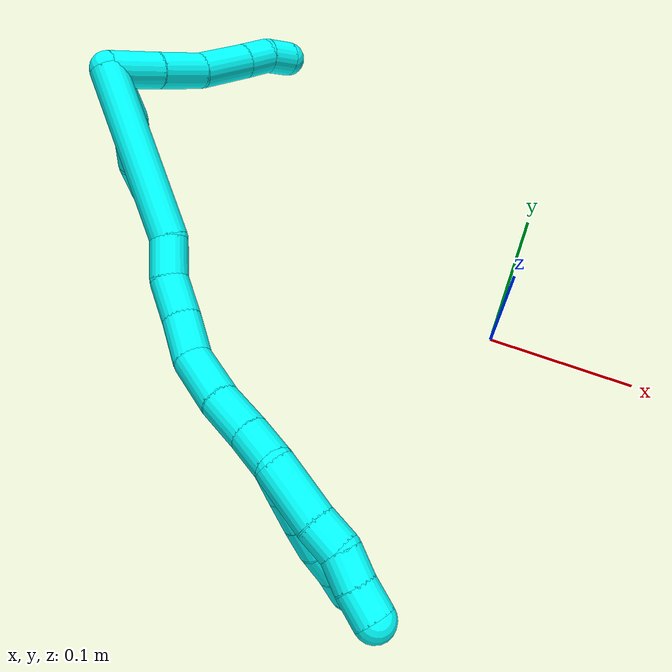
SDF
<sdf version="1.7">
 <world name="default">
  <model name="3">
   <static>0</static>
   <link name="3">
    <collision name="collision-cylinder-e_1_2_8">
     <pose>0.001882 0.017134 -0.005216 -1.86631 0.104681 -0.141186</pose>
     <geometry><cylinder><radius>0.0125</radius><length>0.036017</length></cylinder></geometry>
     <surface>
      <friction><ode><mu>1.16</mu><mu2>1.16</mu2><slip1>0</slip1><slip2>0</slip2></ode></friction>
      <contact><ode><kp>1e+06</kp><kd>1</kd><max_vel>0</max_vel><min_depth>0.001</min_depth></ode></contact>
     </surface>
    </collision>
    <visual name="visual-cylinder-e_1_2_8">
     <pose>0.001882 0.017134 -0.005216 -1.86631 0.104681 -0.141186</pose>
     <geometry><cylinder><radius>0.0125</radius><length>0.036017</length></cylinder></geometry>
     <material><ambient>0.003922 1 0.996078 1</ambient></material>
    </visual>
    <collision name="collision-cylinder-e_2_8_9">
     <pose>0.004596 0.049907 -0.01566 -1.8934 0.050437 -0.070027</pose>
     <geometry><cylinder><radius>0.0125</radius><length>0.033024</length></cylinder></geometry>
     <surface>
      <friction><ode><mu>1.16</mu><mu2>1.16</mu2><slip1>0</slip1><slip2>0</slip2></ode></friction>
      <contact><ode><kp>1e+06</kp><kd>1</kd><max_vel>0</max_vel><min_depth>0.001</min_depth></ode></contact>
     </surface>
    </collision>
    <visual name="visual-cylinder-e_2_8_9">
     <pose>0.004596 0.049907 -0.01566 -1.8934 0.050437 -0.070027</pose>
     <geometry><cylinder><radius>0.0125</radius><length>0.033024</length></cylinder></geometry>
     <material><ambient>0.003922 1 0.996078 1</ambient></material>
    </visual>
    <collision name="collision-cylinder-e_3_9_10">
     <pose>0.00356 0.084726 -0.024958 -1.7799 -0.095035 0.117271</pose>
     <geometry><cylinder><radius>0.0125</radius><length>0.039388</length></cylinder></geometry>
     <surface>
      <friction><ode><mu>1.16</mu><mu2>1.16</mu2><slip1>0</slip1><slip2>0</slip2></ode></friction>
      <contact><ode><kp>1e+06</kp><kd>1</kd><max_vel>0</max_vel><min_depth>0.001</min_depth></ode></contact>
     </surface>
    </collision>
    <visual name="visual-cylinder-e_3_9_10">
     <pose>0.00356 0.084726 -0.024958 -1.7799 -0.095035 0.117271</pose>
     <geometry><cylinder><radius>0.0125</radius><length>0.039388</length></cylinder></geometry>
     <material><ambient>0.003922 1 0.996078 1</ambient></material>
    </visual>
    <collision name="collision-cylinder-e_4_10_11">
     <pose>0.000979 0.114528 -0.030637 -1.72116 -0.066152 0.076919</pose>
     <geometry><cylinder><radius>0.0125</radius><length>0.021538</length></cylinder></geometry>
     <surface>
      <friction><ode><mu>1.16</mu><mu2>1.16</mu2><slip1>0</slip1><slip2>0</slip2></ode></friction>
      <contact><ode><kp>1e+06</kp><kd>1</kd><max_vel>0</max_vel><min_depth>0.001</min_depth></ode></contact>
     </surface>
    </collision>
    <visual name="visual-cylinder-e_4_10_11">
     <pose>0.000979 0.114528 -0.030637 -1.72116 -0.066152 0.076919</pose>
     <geometry><cylinder><radius>0.0125</radius><length>0.021538</length></cylinder></geometry>
     <material><ambient>0.003922 1 0.996078 1</ambient></material>
    </visual>
    <collision name="collision-cylinder-e_5_11_6">
     <pose>0.001401 0.134298 -0.03617 -1.97601 0.113446 -0.171867</pose>
     <geometry><cylinder><radius>0.0125</radius><length>0.020033</length></cylinder></geometry>
     <surface>
      <friction><ode><mu>1.16</mu><mu2>1.16</mu2><slip1>0</slip1><slip2>0</slip2></ode></friction>
      <contact><ode><kp>1e+06</kp><kd>1</kd><max_vel>0</max_vel><min_depth>0.001</min_depth></ode></contact>
     </surface>
    </collision>
    <visual name="visual-cylinder-e_5_11_6">
     <pose>0.001401 0.134298 -0.03617 -1.97601 0.113446 -0.171867</pose>
     <geometry><cylinder><radius>0.0125</radius><length>0.020033</length></cylinder></geometry>
     <material><ambient>0.003922 1 0.996078 1</ambient></material>
    </visual>
    <collision name="collision-cylinder-e_1_2_12">
     <pose>0.007688 0.00323 -0.017312 -2.95711 0.411624 -2.30741</pose>
     <geometry><cylinder><radius>0.0125</radius><length>0.038432</length></cylinder></geometry>
     <surface>
      <friction><ode><mu>1.16</mu><mu2>1.16</mu2><slip1>0</slip1><slip2>0</slip2></ode></friction>
      <contact><ode><kp>1e+06</kp><kd>1</kd><max_vel>0</max_vel><min_depth>0.001</min_depth></ode></contact>
     </surface>
    </collision>
    <visual name="visual-cylinder-e_1_2_12">
     <pose>0.007688 0.00323 -0.017312 -2.95711 0.411624 -2.30741</pose>
     <geometry><cylinder><radius>0.0125</radius><length>0.038432</length></cylinder></geometry>
     <material><ambient>0.003922 1 0.996078 1</ambient></material>
    </visual>
    <collision name="collision-cylinder-e_2_12_13">
     <pose>0.021335 0.00537 -0.052319 3.08002 0.324238 2.76939</pose>
     <geometry><cylinder><radius>0.0125</radius><length>0.037406</length></cylinder></geometry>
     <surface>
      <friction><ode><mu>1.16</mu><mu2>1.16</mu2><slip1>0</slip1><slip2>0</slip2></ode></friction>
      <contact><ode><kp>1e+06</kp><kd>1</kd><max_vel>0</max_vel><min_depth>0.001</min_depth></ode></contact>
     </surface>
    </collision>
    <visual name="visual-cylinder-e_2_12_13">
     <pose>0.021335 0.00537 -0.052319 3.08002 0.324238 2.76939</pose>
     <geometry><cylinder><radius>0.0125</radius><length>0.037406</length></cylinder></geometry>
     <material><ambient>0.003922 1 0.996078 1</ambient></material>
    </visual>
    <collision name="collision-cylinder-e_3_13_5">
     <pose>0.031543 0.006646 -0.081072 -2.93072 0.359452 -2.08671</pose>
     <geometry><cylinder><radius>0.0125</radius><length>0.024162</length></cylinder></geometry>
     <surface>
      <friction><ode><mu>1.16</mu><mu2>1.16</mu2><slip1>0</slip1><slip2>0</slip2></ode></friction>
      <contact><ode><kp>1e+06</kp><kd>1</kd><max_vel>0</max_vel><min_depth>0.001</min_depth></ode></contact>
     </surface>
    </collision>
    <visual name="visual-cylinder-e_3_13_5">
     <pose>0.031543 0.006646 -0.081072 -2.93072 0.359452 -2.08671</pose>
     <geometry><cylinder><radius>0.0125</radius><length>0.024162</length></cylinder></geometry>
     <material><ambient>0.003922 1 0.996078 1</ambient></material>
    </visual>
    <collision name="collision-cylinder-e_1_2_14">
     <pose>0.056966 -0.006508 -0.021019 2.84132 1.20219 2.70735</pose>
     <geometry><cylinder><radius>0.0125</radius><length>0.122135</length></cylinder></geometry>
     <surface>
      <friction><ode><mu>1.16</mu><mu2>1.16</mu2><slip1>0</slip1><slip2>0</slip2></ode></friction>
      <contact><ode><kp>1e+06</kp><kd>1</kd><max_vel>0</max_vel><min_depth>0.001</min_depth></ode></contact>
     </surface>
    </collision>
    <visual name="visual-cylinder-e_1_2_14">
     <pose>0.056966 -0.006508 -0.021019 2.84132 1.20219 2.70735</pose>
     <geometry><cylinder><radius>0.0125</radius><length>0.122135</length></cylinder></geometry>
     <material><ambient>0.003922 1 0.996078 1</ambient></material>
    </visual>
    <collision name="collision-cylinder-e_2_14_15">
     <pose>0.12545 -0.018761 -0.046615 2.24366 1.00313 1.69982</pose>
     <geometry><cylinder><radius>0.0125</radius><length>0.027321</length></cylinder></geometry>
     <surface>
      <friction><ode><mu>1.16</mu><mu2>1.16</mu2><slip1>0</slip1><slip2>0</slip2></ode></friction>
      <contact><ode><kp>1e+06</kp><kd>1</kd><max_vel>0</max_vel><min_depth>0.001</min_depth></ode></contact>
     </surface>
    </collision>
    <visual name="visual-cylinder-e_2_14_15">
     <pose>0.12545 -0.018761 -0.046615 2.24366 1.00313 1.69982</pose>
     <geometry><cylinder><radius>0.0125</radius><length>0.027321</length></cylinder></geometry>
     <material><ambient>0.003922 1 0.996078 1</ambient></material>
    </visual>
    <collision name="collision-cylinder-e_3_15_16">
     <pose>0.150681 -0.027026 -0.053123 2.22404 1.34326 2.02964</pose>
     <geometry><cylinder><radius>0.0125</radius><length>0.028153</length></cylinder></geometry>
     <surface>
      <friction><ode><mu>1.16</mu><mu2>1.16</mu2><slip1>0</slip1><slip2>0</slip2></ode></friction>
      <contact><ode><kp>1e+06</kp><kd>1</kd><max_vel>0</max_vel><min_depth>0.001</min_depth></ode></contact>
     </surface>
    </collision>
    <visual name="visual-cylinder-e_3_15_16">
     <pose>0.150681 -0.027026 -0.053123 2.22404 1.34326 2.02964</pose>
     <geometry><cylinder><radius>0.0125</radius><length>0.028153</length></cylinder></geometry>
     <material><ambient>0.003922 1 0.996078 1</ambient></material>
    </visual>
    <collision name="collision-cylinder-e_4_16_17">
     <pose>0.178678 -0.033016 -0.055754 1.77039 1.32795 1.52648</pose>
     <geometry><cylinder><radius>0.0125</radius><length>0.02943</length></cylinder></geometry>
     <surface>
      <friction><ode><mu>1.16</mu><mu2>1.16</mu2><slip1>0</slip1><slip2>0</slip2></ode></friction>
      <contact><ode><kp>1e+06</kp><kd>1</kd><max_vel>0</max_vel><min_depth>0.001</min_depth></ode></contact>
     </surface>
    </collision>
    <visual name="visual-cylinder-e_4_16_17">
     <pose>0.178678 -0.033016 -0.055754 1.77039 1.32795 1.52648</pose>
     <geometry><cylinder><radius>0.0125</radius><length>0.02943</length></cylinder></geometry>
     <material><ambient>0.003922 1 0.996078 1</ambient></material>
    </visual>
    <collision name="collision-cylinder-e_5_17_18">
     <pose>0.210814 -0.03677 -0.052445 0.071086 1.34924 0.056863</pose>
     <geometry><cylinder><radius>0.0125</radius><length>0.036599</length></cylinder></geometry>
     <surface>
      <friction><ode><mu>1.16</mu><mu2>1.16</mu2><slip1>0</slip1><slip2>0</slip2></ode></friction>
      <contact><ode><kp>1e+06</kp><kd>1</kd><max_vel>0</max_vel><min_depth>0.001</min_depth></ode></contact>
     </surface>
    </collision>
    <visual name="visual-cylinder-e_5_17_18">
     <pose>0.210814 -0.03677 -0.052445 0.071086 1.34924 0.056863</pose>
     <geometry><cylinder><radius>0.0125</radius><length>0.036599</length></cylinder></geometry>
     <material><ambient>0.003922 1 0.996078 1</ambient></material>
    </visual>
    <collision name="collision-cylinder-e_6_18_19">
     <pose>0.243296 -0.035527 -0.0449 -0.408178 1.31352 -0.316451</pose>
     <geometry><cylinder><radius>0.0125</radius><length>0.030256</length></cylinder></geometry>
     <surface>
      <friction><ode><mu>1.16</mu><mu2>1.16</mu2><slip1>0</slip1><slip2>0</slip2></ode></friction>
      <contact><ode><kp>1e+06</kp><kd>1</kd><max_vel>0</max_vel><min_depth>0.001</min_depth></ode></contact>
     </surface>
    </collision>
    <visual name="visual-cylinder-e_6_18_19">
     <pose>0.243296 -0.035527 -0.0449 -0.408178 1.31352 -0.316451</pose>
     <geometry><cylinder><radius>0.0125</radius><length>0.030256</length></cylinder></geometry>
     <material><ambient>0.003922 1 0.996078 1</ambient></material>
    </visual>
    <collision name="collision-cylinder-e_7_19_1">
     <pose>0.270321 -0.033574 -0.037296 -0.10421 1.25183 -0.075364</pose>
     <geometry><cylinder><radius>0.0125</radius><length>0.026105</length></cylinder></geometry>
     <surface>
      <friction><ode><mu>1.16</mu><mu2>1.16</mu2><slip1>0</slip1><slip2>0</slip2></ode></friction>
      <contact><ode><kp>1e+06</kp><kd>1</kd><max_vel>0</max_vel><min_depth>0.001</min_depth></ode></contact>
     </surface>
    </collision>
    <visual name="visual-cylinder-e_7_19_1">
     <pose>0.270321 -0.033574 -0.037296 -0.10421 1.25183 -0.075364</pose>
     <geometry><cylinder><radius>0.0125</radius><length>0.026105</length></cylinder></geometry>
     <material><ambient>0.003922 1 0.996078 1</ambient></material>
    </visual>
    <collision name="collision-cylinder-e_1_1_20">
     <pose>0.290046 -0.031928 -0.039916 -2.96119 0.822941 -2.73285</pose>
     <geometry><cylinder><radius>0.0125</radius><length>0.02</length></cylinder></geometry>
     <surface>
      <friction><ode><mu>1.16</mu><mu2>1.16</mu2><slip1>0</slip1><slip2>0</slip2></ode></friction>
      <contact><ode><kp>1e+06</kp><kd>1</kd><max_vel>0</max_vel><min_depth>0.001</min_depth></ode></contact>
     </surface>
    </collision>
    <visual name="visual-cylinder-e_1_1_20">
     <pose>0.290046 -0.031928 -0.039916 -2.96119 0.822941 -2.73285</pose>
     <geometry><cylinder><radius>0.0125</radius><length>0.02</length></cylinder></geometry>
     <material><ambient>0.003922 1 0.996078 1</ambient></material>
    </visual>
    <collision name="collision-cylinder-e_2_20_21">
     <pose>0.305096 -0.02949 -0.052846 -2.94893 0.881774 -2.73761</pose>
     <geometry><cylinder><radius>0.0125</radius><length>0.02</length></cylinder></geometry>
     <surface>
      <friction><ode><mu>1.16</mu><mu2>1.16</mu2><slip1>0</slip1><slip2>0</slip2></ode></friction>
      <contact><ode><kp>1e+06</kp><kd>1</kd><max_vel>0</max_vel><min_depth>0.001</min_depth></ode></contact>
     </surface>
    </collision>
    <visual name="visual-cylinder-e_2_20_21">
     <pose>0.305096 -0.02949 -0.052846 -2.94893 0.881774 -2.73761</pose>
     <geometry><cylinder><radius>0.0125</radius><length>0.02</length></cylinder></geometry>
     <material><ambient>0.003922 1 0.996078 1</ambient></material>
    </visual>
    <collision name="collision-cylinder-e_3_21_22">
     <pose>0.320459 -0.026673 -0.065332 -2.89091 0.870095 -2.61208</pose>
     <geometry><cylinder><radius>0.0125</radius><length>0.02</length></cylinder></geometry>
     <surface>
      <friction><ode><mu>1.16</mu><mu2>1.16</mu2><slip1>0</slip1><slip2>0</slip2></ode></friction>
      <contact><ode><kp>1e+06</kp><kd>1</kd><max_vel>0</max_vel><min_depth>0.001</min_depth></ode></contact>
     </surface>
    </collision>
    <visual name="visual-cylinder-e_3_21_22">
     <pose>0.320459 -0.026673 -0.065332 -2.89091 0.870095 -2.61208</pose>
     <geometry><cylinder><radius>0.0125</radius><length>0.02</length></cylinder></geometry>
     <material><ambient>0.003922 1 0.996078 1</ambient></material>
    </visual>
    <collision name="collision-cylinder-e_4_22_23">
     <pose>0.33555 -0.022322 -0.077659 -2.71655 0.840105 -2.24148</pose>
     <geometry><cylinder><radius>0.0125</radius><length>0.02</length></cylinder></geometry>
     <surface>
      <friction><ode><mu>1.16</mu><mu2>1.16</mu2><slip1>0</slip1><slip2>0</slip2></ode></friction>
      <contact><ode><kp>1e+06</kp><kd>1</kd><max_vel>0</max_vel><min_depth>0.001</min_depth></ode></contact>
     </surface>
    </collision>
    <visual name="visual-cylinder-e_4_22_23">
     <pose>0.33555 -0.022322 -0.077659 -2.71655 0.840105 -2.24148</pose>
     <geometry><cylinder><radius>0.0125</radius><length>0.02</length></cylinder></geometry>
     <material><ambient>0.003922 1 0.996078 1</ambient></material>
    </visual>
    <collision name="collision-cylinder-e_5_23_4">
     <pose>0.349219 -0.017435 -0.091271 -2.86536 0.671502 -2.38347</pose>
     <geometry><cylinder><radius>0.0125</radius><length>0.02</length></cylinder></geometry>
     <surface>
      <friction><ode><mu>1.16</mu><mu2>1.16</mu2><slip1>0</slip1><slip2>0</slip2></ode></friction>
      <contact><ode><kp>1e+06</kp><kd>1</kd><max_vel>0</max_vel><min_depth>0.001</min_depth></ode></contact>
     </surface>
    </collision>
    <visual name="visual-cylinder-e_5_23_4">
     <pose>0.349219 -0.017435 -0.091271 -2.86536 0.671502 -2.38347</pose>
     <geometry><cylinder><radius>0.0125</radius><length>0.02</length></cylinder></geometry>
     <material><ambient>0.003922 1 0.996078 1</ambient></material>
    </visual>
    <collision name="collision-cylinder-e_1_1_24">
     <pose>0.30253 -0.031441 -0.033709 -1.84666 1.48153 -1.75971</pose>
     <geometry><cylinder><radius>0.0125</radius><length>0.03979</length></cylinder></geometry>
     <surface>
      <friction><ode><mu>1.16</mu><mu2>1.16</mu2><slip1>0</slip1><slip2>0</slip2></ode></friction>
      <contact><ode><kp>1e+06</kp><kd>1</kd><max_vel>0</max_vel><min_depth>0.001</min_depth></ode></contact>
     </surface>
    </collision>
    <visual name="visual-cylinder-e_1_1_24">
     <pose>0.30253 -0.031441 -0.033709 -1.84666 1.48153 -1.75971</pose>
     <geometry><cylinder><radius>0.0125</radius><length>0.03979</length></cylinder></geometry>
     <material><ambient>0.003922 1 0.996078 1</ambient></material>
    </visual>
    <collision name="collision-cylinder-e_2_24_25">
     <pose>0.332184 -0.027897 -0.034486 -1.72934 1.38379 -1.54191</pose>
     <geometry><cylinder><radius>0.0125</radius><length>0.020025</length></cylinder></geometry>
     <surface>
      <friction><ode><mu>1.16</mu><mu2>1.16</mu2><slip1>0</slip1><slip2>0</slip2></ode></friction>
      <contact><ode><kp>1e+06</kp><kd>1</kd><max_vel>0</max_vel><min_depth>0.001</min_depth></ode></contact>
     </surface>
    </collision>
    <visual name="visual-cylinder-e_2_24_25">
     <pose>0.332184 -0.027897 -0.034486 -1.72934 1.38379 -1.54191</pose>
     <geometry><cylinder><radius>0.0125</radius><length>0.020025</length></cylinder></geometry>
     <material><ambient>0.003922 1 0.996078 1</ambient></material>
    </visual>
    <collision name="collision-cylinder-e_3_25_26">
     <pose>0.351748 -0.026899 -0.036993 2.77887 1.33196 2.68304</pose>
     <geometry><cylinder><radius>0.0125</radius><length>0.020021</length></cylinder></geometry>
     <surface>
      <friction><ode><mu>1.16</mu><mu2>1.16</mu2><slip1>0</slip1><slip2>0</slip2></ode></friction>
      <contact><ode><kp>1e+06</kp><kd>1</kd><max_vel>0</max_vel><min_depth>0.001</min_depth></ode></contact>
     </surface>
    </collision>
    <visual name="visual-cylinder-e_3_25_26">
     <pose>0.351748 -0.026899 -0.036993 2.77887 1.33196 2.68304</pose>
     <geometry><cylinder><radius>0.0125</radius><length>0.020021</length></cylinder></geometry>
     <material><ambient>0.003922 1 0.996078 1</ambient></material>
    </visual>
    <collision name="collision-cylinder-e_4_26_3">
     <pose>0.371408 -0.02762 -0.040927 -3.07246 1.39901 -3.05945</pose>
     <geometry><cylinder><radius>0.0125</radius><length>0.020164</length></cylinder></geometry>
     <surface>
      <friction><ode><mu>1.16</mu><mu2>1.16</mu2><slip1>0</slip1><slip2>0</slip2></ode></friction>
      <contact><ode><kp>1e+06</kp><kd>1</kd><max_vel>0</max_vel><min_depth>0.001</min_depth></ode></contact>
     </surface>
    </collision>
    <visual name="visual-cylinder-e_4_26_3">
     <pose>0.371408 -0.02762 -0.040927 -3.07246 1.39901 -3.05945</pose>
     <geometry><cylinder><radius>0.0125</radius><length>0.020164</length></cylinder></geometry>
     <material><ambient>0.003922 1 0.996078 1</ambient></material>
    </visual>
    <collision name="collision-sphere-3">
     <pose>0.381342 -0.027501 -0.042646 0 -0 0</pose>
     <geometry><sphere><radius>0.0125</radius></sphere></geometry>
     <surface>
      <friction><ode><mu>1.16</mu><mu2>1.16</mu2><slip1>0</slip1><slip2>0</slip2></ode></friction>
      <contact><ode><kp>1e+06</kp><kd>1</kd><max_vel>0</max_vel><min_depth>0.001</min_depth></ode></contact>
     </surface>
    </collision>
    <visual name="visual-sphere-3">
     <pose>0.381342 -0.027501 -0.042646 0 -0 0</pose>
     <geometry><sphere><radius>0.0125</radius></sphere></geometry>
     <material><ambient>0.003922 1 0.996078 1</ambient></material>
    </visual>
    <collision name="collision-sphere-26">
     <pose>0.361475 -0.027739 -0.039208 0 -0 0</pose>
     <geometry><sphere><radius>0.0125</radius></sphere></geometry>
     <surface>
      <friction><ode><mu>1.16</mu><mu2>1.16</mu2><slip1>0</slip1><slip2>0</slip2></ode></friction>
      <contact><ode><kp>1e+06</kp><kd>1</kd><max_vel>0</max_vel><min_depth>0.001</min_depth></ode></contact>
     </surface>
    </collision>
    <visual name="visual-sphere-26">
     <pose>0.361475 -0.027739 -0.039208 0 -0 0</pose>
     <geometry><sphere><radius>0.0125</radius></sphere></geometry>
     <material><ambient>0.003922 1 0.996078 1</ambient></material>
    </visual>
    <collision name="collision-sphere-25">
     <pose>0.342022 -0.026059 -0.034779 0 -0 0</pose>
     <geometry><sphere><radius>0.0125</radius></sphere></geometry>
     <surface>
      <friction><ode><mu>1.16</mu><mu2>1.16</mu2><slip1>0</slip1><slip2>0</slip2></ode></friction>
      <contact><ode><kp>1e+06</kp><kd>1</kd><max_vel>0</max_vel><min_depth>0.001</min_depth></ode></contact>
     </surface>
    </collision>
    <visual name="visual-sphere-25">
     <pose>0.342022 -0.026059 -0.034779 0 -0 0</pose>
     <geometry><sphere><radius>0.0125</radius></sphere></geometry>
     <material><ambient>0.003922 1 0.996078 1</ambient></material>
    </visual>
    <collision name="collision-sphere-24">
     <pose>0.322346 -0.029735 -0.034192 0 -0 0</pose>
     <geometry><sphere><radius>0.0125</radius></sphere></geometry>
     <surface>
      <friction><ode><mu>1.16</mu><mu2>1.16</mu2><slip1>0</slip1><slip2>0</slip2></ode></friction>
      <contact><ode><kp>1e+06</kp><kd>1</kd><max_vel>0</max_vel><min_depth>0.001</min_depth></ode></contact>
     </surface>
    </collision>
    <visual name="visual-sphere-24">
     <pose>0.322346 -0.029735 -0.034192 0 -0 0</pose>
     <geometry><sphere><radius>0.0125</radius></sphere></geometry>
     <material><ambient>0.003922 1 0.996078 1</ambient></material>
    </visual>
    <collision name="collision-sphere-4">
     <pose>0.35544 -0.0153 -0.098803 0 -0 0</pose>
     <geometry><sphere><radius>0.0125</radius></sphere></geometry>
     <surface>
      <friction><ode><mu>1.16</mu><mu2>1.16</mu2><slip1>0</slip1><slip2>0</slip2></ode></friction>
      <contact><ode><kp>1e+06</kp><kd>1</kd><max_vel>0</max_vel><min_depth>0.001</min_depth></ode></contact>
     </surface>
    </collision>
    <visual name="visual-sphere-4">
     <pose>0.35544 -0.0153 -0.098803 0 -0 0</pose>
     <geometry><sphere><radius>0.0125</radius></sphere></geometry>
     <material><ambient>0.003922 1 0.996078 1</ambient></material>
    </visual>
    <collision name="collision-sphere-23">
     <pose>0.342997 -0.01957 -0.083739 0 -0 0</pose>
     <geometry><sphere><radius>0.0125</radius></sphere></geometry>
     <surface>
      <friction><ode><mu>1.16</mu><mu2>1.16</mu2><slip1>0</slip1><slip2>0</slip2></ode></friction>
      <contact><ode><kp>1e+06</kp><kd>1</kd><max_vel>0</max_vel><min_depth>0.001</min_depth></ode></contact>
     </surface>
    </collision>
    <visual name="visual-sphere-23">
     <pose>0.342997 -0.01957 -0.083739 0 -0 0</pose>
     <geometry><sphere><radius>0.0125</radius></sphere></geometry>
     <material><ambient>0.003922 1 0.996078 1</ambient></material>
    </visual>
    <collision name="collision-sphere-22">
     <pose>0.328103 -0.025074 -0.071578 0 -0 0</pose>
     <geometry><sphere><radius>0.0125</radius></sphere></geometry>
     <surface>
      <friction><ode><mu>1.16</mu><mu2>1.16</mu2><slip1>0</slip1><slip2>0</slip2></ode></friction>
      <contact><ode><kp>1e+06</kp><kd>1</kd><max_vel>0</max_vel><min_depth>0.001</min_depth></ode></contact>
     </surface>
    </collision>
    <visual name="visual-sphere-22">
     <pose>0.328103 -0.025074 -0.071578 0 -0 0</pose>
     <geometry><sphere><radius>0.0125</radius></sphere></geometry>
     <material><ambient>0.003922 1 0.996078 1</ambient></material>
    </visual>
    <collision name="collision-sphere-21">
     <pose>0.312815 -0.028273 -0.059086 0 -0 0</pose>
     <geometry><sphere><radius>0.0125</radius></sphere></geometry>
     <surface>
      <friction><ode><mu>1.16</mu><mu2>1.16</mu2><slip1>0</slip1><slip2>0</slip2></ode></friction>
      <contact><ode><kp>1e+06</kp><kd>1</kd><max_vel>0</max_vel><min_depth>0.001</min_depth></ode></contact>
     </surface>
    </collision>
    <visual name="visual-sphere-21">
     <pose>0.312815 -0.028273 -0.059086 0 -0 0</pose>
     <geometry><sphere><radius>0.0125</radius></sphere></geometry>
     <material><ambient>0.003922 1 0.996078 1</ambient></material>
    </visual>
    <collision name="collision-sphere-20">
     <pose>0.297378 -0.030708 -0.046606 0 -0 0</pose>
     <geometry><sphere><radius>0.0125</radius></sphere></geometry>
     <surface>
      <friction><ode><mu>1.16</mu><mu2>1.16</mu2><slip1>0</slip1><slip2>0</slip2></ode></friction>
      <contact><ode><kp>1e+06</kp><kd>1</kd><max_vel>0</max_vel><min_depth>0.001</min_depth></ode></contact>
     </surface>
    </collision>
    <visual name="visual-sphere-20">
     <pose>0.297378 -0.030708 -0.046606 0 -0 0</pose>
     <geometry><sphere><radius>0.0125</radius></sphere></geometry>
     <material><ambient>0.003922 1 0.996078 1</ambient></material>
    </visual>
    <collision name="collision-sphere-6">
     <pose>0.002535 0.143445 -0.040093 0 -0 0</pose>
     <geometry><sphere><radius>0.0125</radius></sphere></geometry>
     <surface>
      <friction><ode><mu>1.16</mu><mu2>1.16</mu2><slip1>0</slip1><slip2>0</slip2></ode></friction>
      <contact><ode><kp>1e+06</kp><kd>1</kd><max_vel>0</max_vel><min_depth>0.001</min_depth></ode></contact>
     </surface>
    </collision>
    <visual name="visual-sphere-6">
     <pose>0.002535 0.143445 -0.040093 0 -0 0</pose>
     <geometry><sphere><radius>0.0125</radius></sphere></geometry>
     <material><ambient>0.003922 1 0.996078 1</ambient></material>
    </visual>
    <collision name="collision-sphere-11">
     <pose>0.000267 0.125152 -0.032247 0 -0 0</pose>
     <geometry><sphere><radius>0.0125</radius></sphere></geometry>
     <surface>
      <friction><ode><mu>1.16</mu><mu2>1.16</mu2><slip1>0</slip1><slip2>0</slip2></ode></friction>
      <contact><ode><kp>1e+06</kp><kd>1</kd><max_vel>0</max_vel><min_depth>0.001</min_depth></ode></contact>
     </surface>
    </collision>
    <visual name="visual-sphere-11">
     <pose>0.000267 0.125152 -0.032247 0 -0 0</pose>
     <geometry><sphere><radius>0.0125</radius></sphere></geometry>
     <material><ambient>0.003922 1 0.996078 1</ambient></material>
    </visual>
    <collision name="collision-sphere-10">
     <pose>0.001691 0.103904 -0.029028 0 -0 0</pose>
     <geometry><sphere><radius>0.0125</radius></sphere></geometry>
     <surface>
      <friction><ode><mu>1.16</mu><mu2>1.16</mu2><slip1>0</slip1><slip2>0</slip2></ode></friction>
      <contact><ode><kp>1e+06</kp><kd>1</kd><max_vel>0</max_vel><min_depth>0.001</min_depth></ode></contact>
     </surface>
    </collision>
    <visual name="visual-sphere-10">
     <pose>0.001691 0.103904 -0.029028 0 -0 0</pose>
     <geometry><sphere><radius>0.0125</radius></sphere></geometry>
     <material><ambient>0.003922 1 0.996078 1</ambient></material>
    </visual>
    <collision name="collision-sphere-9">
     <pose>0.005428 0.065547 -0.020888 0 -0 0</pose>
     <geometry><sphere><radius>0.0125</radius></sphere></geometry>
     <surface>
      <friction><ode><mu>1.16</mu><mu2>1.16</mu2><slip1>0</slip1><slip2>0</slip2></ode></friction>
      <contact><ode><kp>1e+06</kp><kd>1</kd><max_vel>0</max_vel><min_depth>0.001</min_depth></ode></contact>
     </surface>
    </collision>
    <visual name="visual-sphere-9">
     <pose>0.005428 0.065547 -0.020888 0 -0 0</pose>
     <geometry><sphere><radius>0.0125</radius></sphere></geometry>
     <material><ambient>0.003922 1 0.996078 1</ambient></material>
    </visual>
    <collision name="collision-sphere-2">
     <geometry><sphere><radius>0.0125</radius></sphere></geometry>
     <surface>
      <friction><ode><mu>1.16</mu><mu2>1.16</mu2><slip1>0</slip1><slip2>0</slip2></ode></friction>
      <contact><ode><kp>1e+06</kp><kd>1</kd><max_vel>0</max_vel><min_depth>0.001</min_depth></ode></contact>
     </surface>
    </collision>
    <visual name="visual-sphere-2">
     <geometry><sphere><radius>0.0125</radius></sphere></geometry>
     <material><ambient>0.003922 1 0.996078 1</ambient></material>
    </visual>
    <collision name="collision-sphere-19">
     <pose>0.257926 -0.033999 -0.041367 0 -0 0</pose>
     <geometry><sphere><radius>0.0125</radius></sphere></geometry>
     <surface>
      <friction><ode><mu>1.16</mu><mu2>1.16</mu2><slip1>0</slip1><slip2>0</slip2></ode></friction>
      <contact><ode><kp>1e+06</kp><kd>1</kd><max_vel>0</max_vel><min_depth>0.001</min_depth></ode></contact>
     </surface>
    </collision>
    <visual name="visual-sphere-19">
     <pose>0.257926 -0.033999 -0.041367 0 -0 0</pose>
     <geometry><sphere><radius>0.0125</radius></sphere></geometry>
     <material><ambient>0.003922 1 0.996078 1</ambient></material>
    </visual>
    <collision name="collision-sphere-8">
     <pose>0.003763 0.034267 -0.010432 0 -0 0</pose>
     <geometry><sphere><radius>0.0125</radius></sphere></geometry>
     <surface>
      <friction><ode><mu>1.16</mu><mu2>1.16</mu2><slip1>0</slip1><slip2>0</slip2></ode></friction>
      <contact><ode><kp>1e+06</kp><kd>1</kd><max_vel>0</max_vel><min_depth>0.001</min_depth></ode></contact>
     </surface>
    </collision>
    <visual name="visual-sphere-8">
     <pose>0.003763 0.034267 -0.010432 0 -0 0</pose>
     <geometry><sphere><radius>0.0125</radius></sphere></geometry>
     <material><ambient>0.003922 1 0.996078 1</ambient></material>
    </visual>
    <collision name="collision-sphere-12">
     <pose>0.015377 0.006461 -0.034624 0 -0 0</pose>
     <geometry><sphere><radius>0.0125</radius></sphere></geometry>
     <surface>
      <friction><ode><mu>1.16</mu><mu2>1.16</mu2><slip1>0</slip1><slip2>0</slip2></ode></friction>
      <contact><ode><kp>1e+06</kp><kd>1</kd><max_vel>0</max_vel><min_depth>0.001</min_depth></ode></contact>
     </surface>
    </collision>
    <visual name="visual-sphere-12">
     <pose>0.015377 0.006461 -0.034624 0 -0 0</pose>
     <geometry><sphere><radius>0.0125</radius></sphere></geometry>
     <material><ambient>0.003922 1 0.996078 1</ambient></material>
    </visual>
    <collision name="collision-sphere-13">
     <pose>0.027294 0.004279 -0.070014 0 -0 0</pose>
     <geometry><sphere><radius>0.0125</radius></sphere></geometry>
     <surface>
      <friction><ode><mu>1.16</mu><mu2>1.16</mu2><slip1>0</slip1><slip2>0</slip2></ode></friction>
      <contact><ode><kp>1e+06</kp><kd>1</kd><max_vel>0</max_vel><min_depth>0.001</min_depth></ode></contact>
     </surface>
    </collision>
    <visual name="visual-sphere-13">
     <pose>0.027294 0.004279 -0.070014 0 -0 0</pose>
     <geometry><sphere><radius>0.0125</radius></sphere></geometry>
     <material><ambient>0.003922 1 0.996078 1</ambient></material>
    </visual>
    <collision name="collision-sphere-5">
     <pose>0.035793 0.009014 -0.092131 0 -0 0</pose>
     <geometry><sphere><radius>0.0125</radius></sphere></geometry>
     <surface>
      <friction><ode><mu>1.16</mu><mu2>1.16</mu2><slip1>0</slip1><slip2>0</slip2></ode></friction>
      <contact><ode><kp>1e+06</kp><kd>1</kd><max_vel>0</max_vel><min_depth>0.001</min_depth></ode></contact>
     </surface>
    </collision>
    <visual name="visual-sphere-5">
     <pose>0.035793 0.009014 -0.092131 0 -0 0</pose>
     <geometry><sphere><radius>0.0125</radius></sphere></geometry>
     <material><ambient>0.003922 1 0.996078 1</ambient></material>
    </visual>
    <collision name="collision-sphere-14">
     <pose>0.113932 -0.013017 -0.042038 0 -0 0</pose>
     <geometry><sphere><radius>0.0125</radius></sphere></geometry>
     <surface>
      <friction><ode><mu>1.16</mu><mu2>1.16</mu2><slip1>0</slip1><slip2>0</slip2></ode></friction>
      <contact><ode><kp>1e+06</kp><kd>1</kd><max_vel>0</max_vel><min_depth>0.001</min_depth></ode></contact>
     </surface>
    </collision>
    <visual name="visual-sphere-14">
     <pose>0.113932 -0.013017 -0.042038 0 -0 0</pose>
     <geometry><sphere><radius>0.0125</radius></sphere></geometry>
     <material><ambient>0.003922 1 0.996078 1</ambient></material>
    </visual>
    <collision name="collision-sphere-15">
     <pose>0.136968 -0.024505 -0.051193 0 -0 0</pose>
     <geometry><sphere><radius>0.0125</radius></sphere></geometry>
     <surface>
      <friction><ode><mu>1.16</mu><mu2>1.16</mu2><slip1>0</slip1><slip2>0</slip2></ode></friction>
      <contact><ode><kp>1e+06</kp><kd>1</kd><max_vel>0</max_vel><min_depth>0.001</min_depth></ode></contact>
     </surface>
    </collision>
    <visual name="visual-sphere-15">
     <pose>0.136968 -0.024505 -0.051193 0 -0 0</pose>
     <geometry><sphere><radius>0.0125</radius></sphere></geometry>
     <material><ambient>0.003922 1 0.996078 1</ambient></material>
    </visual>
    <collision name="collision-sphere-16">
     <pose>0.164395 -0.029548 -0.055053 0 -0 0</pose>
     <geometry><sphere><radius>0.0125</radius></sphere></geometry>
     <surface>
      <friction><ode><mu>1.16</mu><mu2>1.16</mu2><slip1>0</slip1><slip2>0</slip2></ode></friction>
      <contact><ode><kp>1e+06</kp><kd>1</kd><max_vel>0</max_vel><min_depth>0.001</min_depth></ode></contact>
     </surface>
    </collision>
    <visual name="visual-sphere-16">
     <pose>0.164395 -0.029548 -0.055053 0 -0 0</pose>
     <geometry><sphere><radius>0.0125</radius></sphere></geometry>
     <material><ambient>0.003922 1 0.996078 1</ambient></material>
    </visual>
    <collision name="collision-sphere-17">
     <pose>0.192962 -0.036484 -0.056456 0 -0 0</pose>
     <geometry><sphere><radius>0.0125</radius></sphere></geometry>
     <surface>
      <friction><ode><mu>1.16</mu><mu2>1.16</mu2><slip1>0</slip1><slip2>0</slip2></ode></friction>
      <contact><ode><kp>1e+06</kp><kd>1</kd><max_vel>0</max_vel><min_depth>0.001</min_depth></ode></contact>
     </surface>
    </collision>
    <visual name="visual-sphere-17">
     <pose>0.192962 -0.036484 -0.056456 0 -0 0</pose>
     <geometry><sphere><radius>0.0125</radius></sphere></geometry>
     <material><ambient>0.003922 1 0.996078 1</ambient></material>
    </visual>
    <collision name="collision-sphere-18">
     <pose>0.228666 -0.037055 -0.048433 0 -0 0</pose>
     <geometry><sphere><radius>0.0125</radius></sphere></geometry>
     <surface>
      <friction><ode><mu>1.16</mu><mu2>1.16</mu2><slip1>0</slip1><slip2>0</slip2></ode></friction>
      <contact><ode><kp>1e+06</kp><kd>1</kd><max_vel>0</max_vel><min_depth>0.001</min_depth></ode></contact>
     </surface>
    </collision>
    <visual name="visual-sphere-18">
     <pose>0.228666 -0.037055 -0.048433 0 -0 0</pose>
     <geometry><sphere><radius>0.0125</radius></sphere></geometry>
     <material><ambient>0.003922 1 0.996078 1</ambient></material>
    </visual>
    <collision name="collision-sphere-1">
     <pose>0.282715 -0.033148 -0.033225 0 -0 0</pose>
     <geometry><sphere><radius>0.0125</radius></sphere></geometry>
     <surface>
      <friction><ode><mu>1.16</mu><mu2>1.16</mu2><slip1>0</slip1><slip2>0</slip2></ode></friction>
      <contact><ode><kp>1e+06</kp><kd>1</kd><max_vel>0</max_vel><min_depth>0.001</min_depth></ode></contact>
     </surface>
    </collision>
    <visual name="visual-sphere-1">
     <pose>0.282715 -0.033148 -0.033225 0 -0 0</pose>
     <geometry><sphere><radius>0.0125</radius></sphere></geometry>
     <material><ambient>0.003922 1 0.996078 1</ambient></material>
    </visual>
    <inertial>
     <pose>0.146016 -0.000739 -0.038694 0 -0 0</pose>
     <mass>0.75</mass>
     <inertia>
      <ixx>1.3e-05</ixx>
      <ixy>0</ixy>
      <ixz>0</ixz>
      <iyy>0.000227</iyy>
      <iyz>0</iyz>
      <izz>-0.000209</izz>
     </inertia>
    </inertial>
   </link>
   <pose>-0.295499 0.054094 0.103209 -0.217932 -0.00512 -0.652435</pose>
  </model>
 </world>
</sdf>
